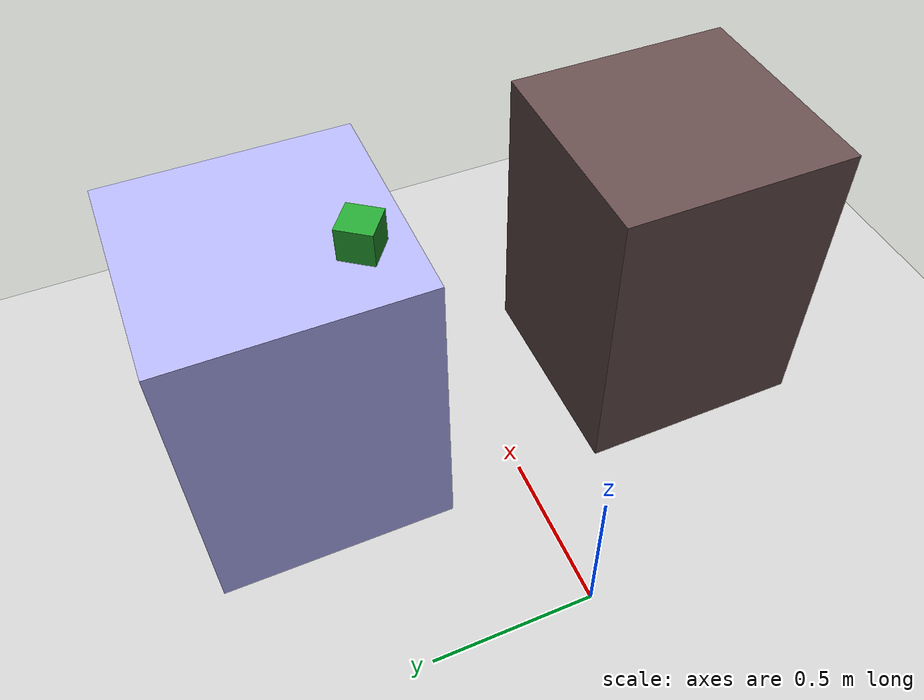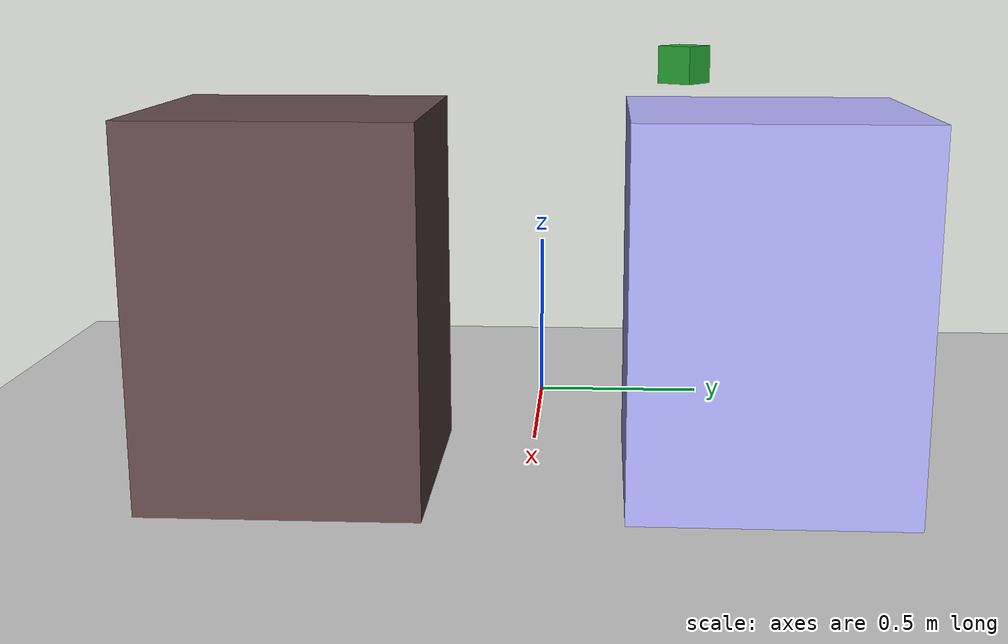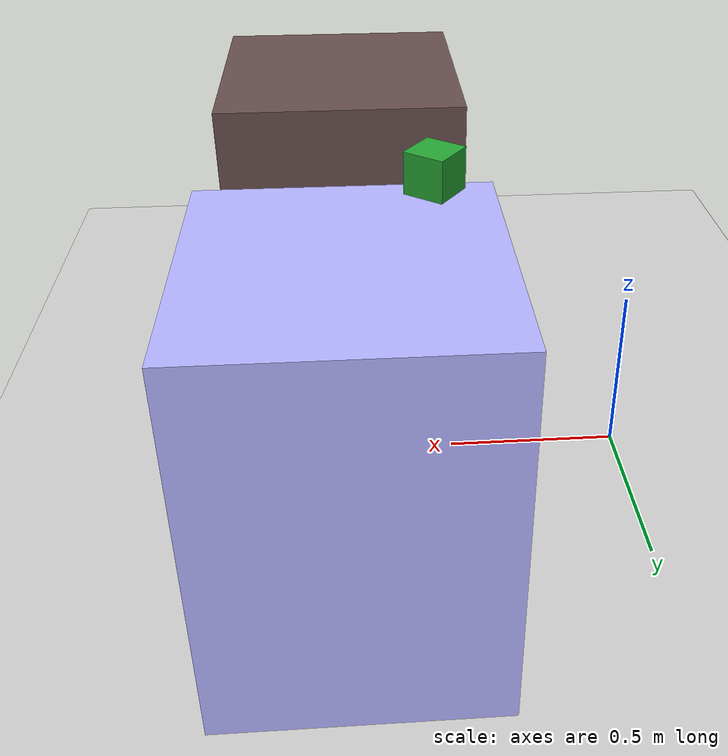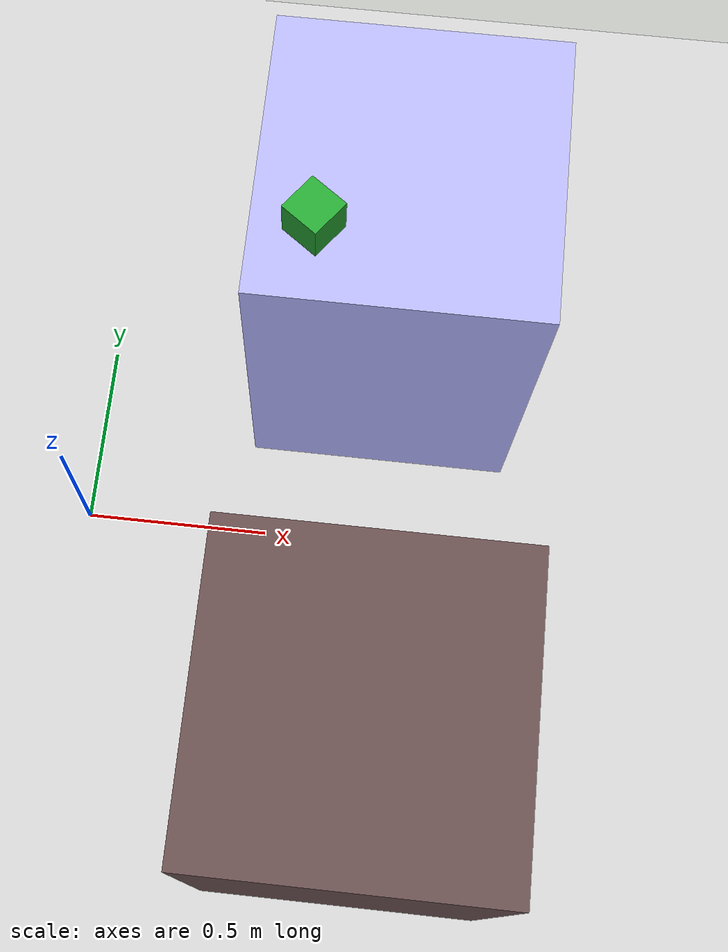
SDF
<sdf version="1.6">
 <world name="default">
  <light name="sun" type="directional">
   <pose>0 0 10 0 -0 0</pose>
   <diffuse>0.8 0.8 0.8 1</diffuse>
   <specular>0.2 0.2 0.2 1</specular>
   <attenuation>
    <range>1000</range>
    <constant>0.9</constant>
    <linear>0.01</linear>
    <quadratic>0.001</quadratic>
   </attenuation>
   <direction>-0.5 0.1 -0.9</direction>
  </light>
  <physics name="dart_2ms" default="0" type="dart">
   <max_step_size>0.002</max_step_size>
   <real_time_factor>1</real_time_factor>
   <real_time_update_rate>500</real_time_update_rate>
   <dart><solver><solver_type>pgs</solver_type></solver></dart>
  </physics>
  <model name="ground_plane">
   <static>1</static>
   <link name="link">
    <collision name="collision">
     <geometry><plane><normal>0 0 1</normal><size>100 100</size></plane></geometry>
     <surface>
      <contact><collide_bitmask>65535</collide_bitmask></contact>
      <friction><ode><mu>100</mu><mu2>50</mu2></ode></friction>
     </surface>
    </collision>
    <visual name="visual">
     <cast_shadows>0</cast_shadows>
     <geometry><plane><normal>0 0 1</normal><size>100 100</size></plane></geometry>
     <material>
      <script><uri>file://media/materials/scripts/gazebo.material</uri><name>Gazebo/Grey</name></script>
     </material>
    </visual>
   </link>
  </model>
  <gravity>0 0 -9.8</gravity>
  <magnetic_field>6e-06 2.3e-05 -4.2e-05</magnetic_field>
  <atmosphere type="adiabatic"/>
  <scene><ambient>0.4 0.4 0.4 1</ambient><background>0.7 0.7 0.7 1</background><shadows>1</shadows></scene>
  <spherical_coordinates>
   <surface_model>EARTH_WGS84</surface_model>
   <latitude_deg>0</latitude_deg>
   <longitude_deg>0</longitude_deg>
   <elevation>0</elevation>
   <heading_deg>0</heading_deg>
  </spherical_coordinates>
  <model name="object1">
   <link name="link">
    <inertial>
     <mass>0.2</mass>
     <inertia><ixx>0.00125</ixx><ixy>0</ixy><ixz>0</ixz><iyy>0.00125</iyy><iyz>0</iyz><izz>0.0005</izz></inertia>
    </inertial>
    <collision name="box"><geometry><box><size>0.1 0.1 0.1</size></box></geometry></collision>
    <visual name="box">
     <geometry><box><size>0.1 0.1 0.1</size></box></geometry>
     <material>
      <script><uri>file://media/materials/scripts/gazebo.material</uri><name>Gazebo/Green</name></script>
     </material>
    </visual>
   </link>
   <pose>0.593358 0.407643 1.1 -1e-06 -1e-06 0.93413</pose>
  </model>
  <model name="unit_box">
   <pose>0.802766 -0.618043 0.5 0 -0 0.002576</pose>
   <link name="link">
    <inertial>
     <mass>1</mass>
     <inertia>
      <ixx>0.166667</ixx>
      <ixy>0</ixy>
      <ixz>0</ixz>
      <iyy>0.166667</iyy>
      <iyz>0</iyz>
      <izz>0.166667</izz>
     </inertia>
    </inertial>
    <collision name="collision"><geometry><box><size>0.710295 0.73351 1</size></box></geometry></collision>
    <visual name="visual">
     <geometry><box><size>0.710295 0.73351 1</size></box></geometry>
     <material>
      <script><name>Gazebo/Grey</name><uri>file://media/materials/scripts/gazebo.material</uri></script>
      <shader type="pixel"><normal_map>__default__</normal_map></shader>
      <specular>0.5 0.5 0 0</specular>
      <ambient>0.4 0.3 0.3 1</ambient>
      <diffuse>0.7 0.7 0.7 1</diffuse>
      <emissive>0.5 0.5 0 1</emissive>
     </material>
    </visual>
   </link>
  </model>
  <model name="unit_box_clone">
   <pose>0.796845 0.623093 0.5 0 -0 7e-06</pose>
   <link name="link">
    <inertial>
     <mass>1</mass>
     <inertia>
      <ixx>0.166667</ixx>
      <ixy>0</ixy>
      <ixz>0</ixz>
      <iyy>0.166667</iyy>
      <iyz>0</iyz>
      <izz>0.166667</izz>
     </inertia>
    </inertial>
    <collision name="collision"><geometry><box><size>0.710295 0.73351 1</size></box></geometry></collision>
    <visual name="visual">
     <geometry><box><size>0.710295 0.73351 1</size></box></geometry>
     <material>
      <script><name>Gazebo/Grey</name><uri>file://media/materials/scripts/gazebo.material</uri></script>
      <shader type="pixel"><normal_map>__default__</normal_map></shader>
      <ambient>0 0.5 0.5 0</ambient>
      <diffuse>0.7 0.7 1 1</diffuse>
      <specular>0.01 0.01 1 1</specular>
      <emissive>0 0.5 0.5 1</emissive>
     </material>
    </visual>
   </link>
  </model>
 </world>
</sdf>
